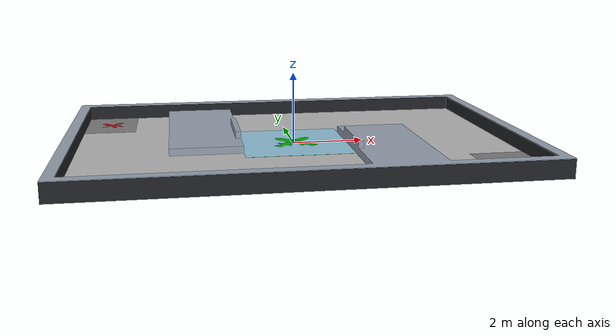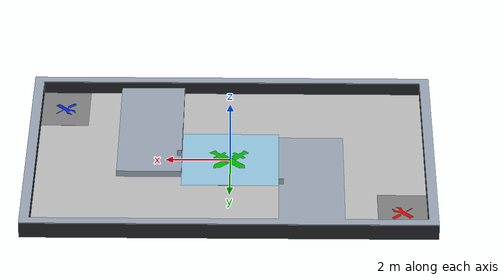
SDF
<?xml version='1.0' encoding='utf-8'?>
<sdf version='1.7'>
  <world name='default'>
    <!-- Physics -->
    <plugin filename="libignition-gazebo-physics-system.so" name="ignition::gazebo::systems::Physics">
    </plugin>

    <!-- Forwards simulation state to the GUI -->
    <plugin filename="libignition-gazebo-scene-broadcaster-system.so" name="ignition::gazebo::systems::SceneBroadcaster">
    </plugin>

    <!-- Processes user commands, like translate and create -->
    <plugin filename="libignition-gazebo-user-commands-system.so" name="ignition::gazebo::systems::UserCommands">
    </plugin>

    <!-- Generates rendering sensor data -->
    <plugin filename="libignition-gazebo-sensors-system.so" name="ignition::gazebo::systems::Sensors">
      <render_engine>ogre2</render_engine>
    </plugin>

    <plugin filename="libignition-gazebo-imu-system.so" name="ignition::gazebo::systems::Imu">
    </plugin>

    <light type='directional' name='direct_light'>
      <visualize>false</visualize>
      <cast_shadows>true</cast_shadows>
      <pose>7.4 3.6 10 0 0 0</pose>
      <diffuse>1.0 1.0 1.0 1</diffuse>
      <specular>0.5 0.5 0.5 1</specular>
      <attenuation>
        <range>1000</range>
        <constant>0.9</constant>
        <linear>0.01</linear>
        <quadratic>0.001</quadratic>
      </attenuation>
      <direction>0 0 -1</direction>
    </light>

    <model name='rmul_2026'>
      <include>
        <uri>model://rmul_2026</uri>
      </include>
      <pose>0.0 0.0 0.01 0 0 0</pose>
      <static>true</static>
    </model>
  </world>
</sdf>

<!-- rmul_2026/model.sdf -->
<sdf version="1.7">
  <model name="rmul_2026">
    <static>true</static>
    <link name="body">
      <visual name="part_0">
        <geometry><mesh><uri>model://rmul_2026/meshes/visual_parts/part_0.stl</uri></mesh></geometry>
        <material><ambient>0.00000 0.11765 0.84314 1</ambient><diffuse>0.00000 0.11765 0.84314 1</diffuse></material>
      </visual>
      <visual name="part_1">
        <geometry><mesh><uri>model://rmul_2026/meshes/visual_parts/part_1.stl</uri></mesh></geometry>
        <material><ambient>0.00000 0.70588 0.00000 1</ambient><diffuse>0.00000 0.70588 0.00000 1</diffuse></material>
      </visual>
      <visual name="part_2">
        <geometry><mesh><uri>model://rmul_2026/meshes/visual_parts/part_2.stl</uri></mesh></geometry>
        <material><ambient>0.12941 0.14118 0.15686 1</ambient><diffuse>0.12941 0.14118 0.15686 1</diffuse></material>
      </visual>
      <visual name="part_3">
        <geometry><mesh><uri>model://rmul_2026/meshes/visual_parts/part_3.stl</uri></mesh></geometry>
        <material><ambient>0.49020 0.49020 0.49020 1</ambient><diffuse>0.49020 0.49020 0.49020 1</diffuse></material>
      </visual>
      <visual name="part_4">
        <geometry><mesh><uri>model://rmul_2026/meshes/visual_parts/part_4.stl</uri></mesh></geometry>
        <material><ambient>0.56863 0.76471 0.86275 1</ambient><diffuse>0.56863 0.76471 0.86275 1</diffuse></material>
      </visual>
      <visual name="part_5">
        <geometry><mesh><uri>model://rmul_2026/meshes/visual_parts/part_5.stl</uri></mesh></geometry>
        <material><ambient>0.59216 0.63922 0.69804 1</ambient><diffuse>0.59216 0.63922 0.69804 1</diffuse></material>
      </visual>
      <visual name="part_6">
        <geometry><mesh><uri>model://rmul_2026/meshes/visual_parts/part_6.stl</uri></mesh></geometry>
        <material><ambient>0.72549 0.72549 0.72549 1</ambient><diffuse>0.72549 0.72549 0.72549 1</diffuse></material>
      </visual>
      <visual name="part_7">
        <geometry><mesh><uri>model://rmul_2026/meshes/visual_parts/part_7.stl</uri></mesh></geometry>
        <material><ambient>0.86275 0.00000 0.00000 1</ambient><diffuse>0.86275 0.00000 0.00000 1</diffuse></material>
      </visual>
      <collision name="field_collision">
        <geometry><mesh><uri>model://rmul_2026/meshes/rmul_2026.stl</uri></mesh></geometry>
      </collision>
    </link>
  </model>
</sdf>
